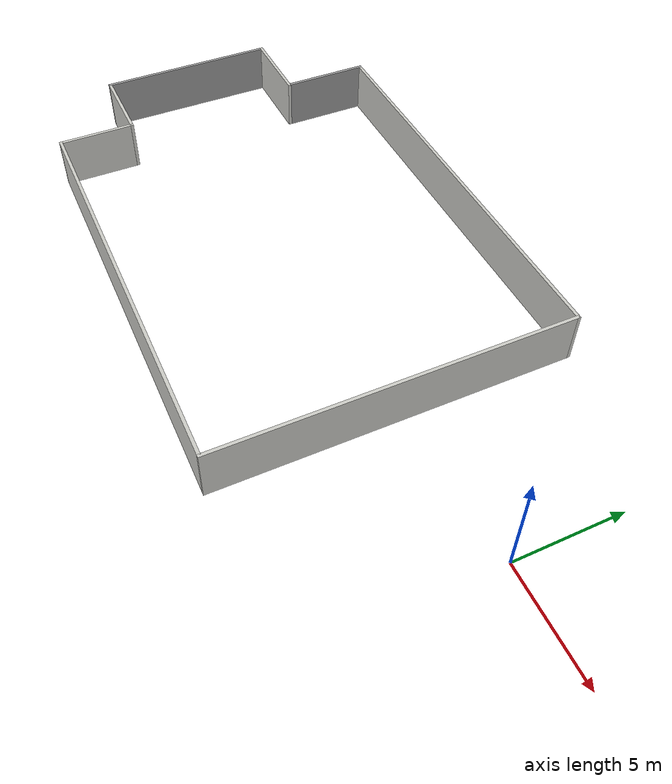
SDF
<?xml version='1.0'?>
<sdf version='1.7'>
  <model name='big_room'>
    <pose>-15.6092 -0.757828 0 0 -0 0</pose>
    <link name='Wall_1'>
      <collision name='Wall_1_Collision'>
        <geometry>
          <box>
            <size>20.25 0.15 2.5</size>
          </box>
        </geometry>
        <pose>0 0 1.25 0 -0 0</pose>
      </collision>
      <visual name='Wall_1_Visual'>
        <pose>0 0 1.25 0 -0 0</pose>
        <geometry>
          <box>
            <size>20.25 0.15 2.5</size>
          </box>
        </geometry>
        <material>
          <script>
            <uri>file://media/materials/scripts/gazebo.material</uri>
            <name>Gazebo/CeilingTiled</name>
          </script>
          <ambient>1 1 1 1</ambient>
        </material>
        <meta>
          <layer>0</layer>
        </meta>
      </visual>
      <pose>-1.63425 -8.175 0 0 -0 0</pose>
    </link>
    <link name='Wall_11'>
      <collision name='Wall_11_Collision'>
        <geometry>
          <box>
            <size>3.75 0.15 2.5</size>
          </box>
        </geometry>
        <pose>0 0 1.25 0 -0 0</pose>
      </collision>
      <visual name='Wall_11_Visual'>
        <pose>0 0 1.25 0 -0 0</pose>
        <geometry>
          <box>
            <size>3.75 0.15 2.5</size>
          </box>
        </geometry>
        <material>
          <script>
            <uri>file://media/materials/scripts/gazebo.material</uri>
            <name>Gazebo/CeilingTiled</name>
          </script>
          <ambient>1 1 1 1</ambient>
        </material>
        <meta>
          <layer>0</layer>
        </meta>
      </visual>
      <pose>-11.6842 -6.375 0 0 -0 1.5708</pose>
    </link>
    <link name='Wall_12'>
      <collision name='Wall_12_Collision'>
        <geometry>
          <box>
            <size>4 0.15 2.5</size>
          </box>
        </geometry>
        <pose>0 0 1.25 0 -0 0</pose>
      </collision>
      <visual name='Wall_12_Visual'>
        <pose>0 0 1.25 0 -0 0</pose>
        <geometry>
          <box>
            <size>4 0.15 2.5</size>
          </box>
        </geometry>
        <material>
          <script>
            <uri>file://media/materials/scripts/gazebo.material</uri>
            <name>Gazebo/CeilingTiled</name>
          </script>
          <ambient>1 1 1 1</ambient>
        </material>
        <meta>
          <layer>0</layer>
        </meta>
      </visual>
      <pose>-13.6092 -4.575 0 0 -0 3.14159</pose>
    </link>
    <link name='Wall_13'>
      <collision name='Wall_13_Collision'>
        <geometry>
          <box>
            <size>8.75 0.15 2.5</size>
          </box>
        </geometry>
        <pose>0 0 1.25 0 -0 0</pose>
      </collision>
      <visual name='Wall_13_Visual'>
        <pose>0 0 1.25 0 -0 0</pose>
        <geometry>
          <box>
            <size>8.75 0.15 2.5</size>
          </box>
        </geometry>
        <material>
          <script>
            <uri>file://media/materials/scripts/gazebo.material</uri>
            <name>Gazebo/Grey</name>
          </script>
          <ambient>1 1 1 1</ambient>
        </material>
        <meta>
          <layer>0</layer>
        </meta>
      </visual>
      <pose>-15.5342 -0.275 0 0 -0 1.5708</pose>
    </link>
    <link name='Wall_14'>
      <collision name='Wall_14_Collision'>
        <geometry>
          <box>
            <size>4 0.15 2.5</size>
          </box>
        </geometry>
        <pose>0 0 1.25 0 -0 0</pose>
      </collision>
      <visual name='Wall_14_Visual'>
        <pose>0 0 1.25 0 -0 0</pose>
        <geometry>
          <box>
            <size>4 0.15 2.5</size>
          </box>
        </geometry>
        <material>
          <script>
            <uri>file://media/materials/scripts/gazebo.material</uri>
            <name>Gazebo/CeilingTiled</name>
          </script>
          <ambient>1 1 1 1</ambient>
        </material>
        <meta>
          <layer>0</layer>
        </meta>
      </visual>
      <pose>-13.6092 4.025 0 0 -0 0</pose>
    </link>
    <link name='Wall_16'>
      <collision name='Wall_16_Collision'>
        <geometry>
          <box>
            <size>4.25 0.15 2.5</size>
          </box>
        </geometry>
        <pose>0 0 1.25 0 -0 0</pose>
      </collision>
      <visual name='Wall_16_Visual'>
        <pose>0 0 1.25 0 -0 0</pose>
        <geometry>
          <box>
            <size>4.25 0.15 2.5</size>
          </box>
        </geometry>
        <material>
          <script>
            <uri>file://media/materials/scripts/gazebo.material</uri>
            <name>Gazebo/Grey</name>
          </script>
          <ambient>1 1 1 1</ambient>
        </material>
        <meta>
          <layer>0</layer>
        </meta>
      </visual>
      <pose>-11.6842 6.125 0 0 -0 -1.5708</pose>
    </link>
    <link name='Wall_2'>
      <collision name='Wall_2_Collision'>
        <geometry>
          <box>
            <size>16.5 0.15 2.5</size>
          </box>
        </geometry>
        <pose>0 0 1.25 0 -0 0</pose>
      </collision>
      <visual name='Wall_2_Visual'>
        <pose>0 0 1.25 0 -0 0</pose>
        <geometry>
          <box>
            <size>16.5 0.15 2.5</size>
          </box>
        </geometry>
        <material>
          <script>
            <uri>file://media/materials/scripts/gazebo.material</uri>
            <name>Gazebo/CeilingTiled</name>
          </script>
          <ambient>1 1 1 1</ambient>
        </material>
        <meta>
          <layer>0</layer>
        </meta>
      </visual>
      <pose>8.41575 -0 0 0 -0 1.5708</pose>
    </link>
    <link name='Wall_7'>
      <collision name='Wall_7_Collision'>
        <geometry>
          <box>
            <size>20.25 0.15 2.5</size>
          </box>
        </geometry>
        <pose>0 0 1.25 0 -0 0</pose>
      </collision>
      <visual name='Wall_7_Visual'>
        <pose>0 0 1.25 0 -0 0</pose>
        <geometry>
          <box>
            <size>20.25 0.15 2.5</size>
          </box>
        </geometry>
        <material>
          <script>
            <uri>file://media/materials/scripts/gazebo.material</uri>
            <name>Gazebo/CeilingTiled</name>
          </script>
          <ambient>1 1 1 1</ambient>
        </material>
        <meta>
          <layer>0</layer>
        </meta>
      </visual>
      <pose>-1.63425 8.175 0 0 -0 0</pose>
    </link>
    <static>1</static>
  </model>
</sdf>
